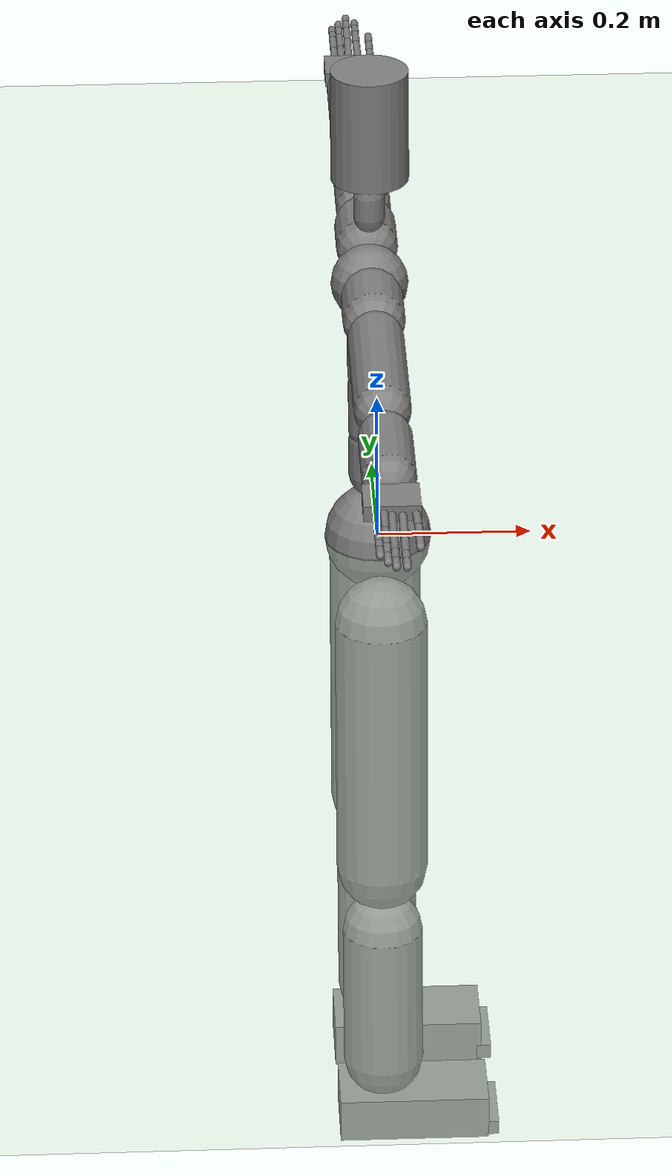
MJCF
<!-- change the damping from 50 to 500 -->
<mujoco model="humanoid">
  <compiler coordinate="local"/>
  <statistic extent="2" center="0 0 1"/>
  <option timestep="0.00555"/>
  <default>
    <motor ctrlrange="-1 1" ctrllimited="true"/>
    <geom type="capsule" condim="1" friction="1.0 0.05 0.05" solimp=".9 .99 .003" solref=".015 1"/>
    <joint type="hinge" damping="0.1" stiffness="5" armature=".007" limited="true" solimplimit="0 .99 .01"/>
    <site size=".04" group="3"/>
    <default class="force-torque">
      <site type="box" size=".01 .01 .02" rgba="1 0 0 1"/>
    </default>
    <default class="touch">
      <site type="capsule" rgba="0 0 1 .3"/>
    </default>
  </default>
  <asset>
    <texture type="skybox" builtin="gradient" rgb1=".4 .5 .6" rgb2="0 0 0" width="100" height="100"/>
    <texture builtin="flat" height="1278" mark="cross" markrgb="1 1 1" name="texgeom" random="0.01" rgb1="0.8 0.6 0.4" rgb2="0.8 0.6 0.4" type="cube" width="127"/>
    <texture builtin="checker" height="100" name="texplane" rgb1="0 0 0" rgb2="0.8 0.8 0.8" type="2d" width="100"/>
    <material name="MatPlane" reflectance="0.5" shininess="1" specular="1" texrepeat="60 60" texture="texplane"/>
    <material name="geom" texture="texgeom" texuniform="true"/>
  </asset>
  <worldbody>
    <light cutoff="100" diffuse="1 1 1" dir="-0 0 -1.3" directional="true" exponent="1" pos="0 0 1.3" specular=".1 .1 .1"/>
    <geom conaffinity="1" condim="3" name="floor" pos="0 0 0" rgba="0.8 0.9 0.8 1" size="100 100 .2" type="plane" material="MatPlane"/>
    <body name="pHipOrigin" pos="0 0 0">
      <freejoint name="pHipOrigin"/>
      <geom type="sphere" contype="1" conaffinity="1" density="4629.6296296296305" size="0.07011" pos="0.0000 0.0000 -0.0000"/>
      <body name="jL5S1" pos="-0.00794668  0 0.07151992">
        <geom type="capsule" contype="1" conaffinity="1" density="1000" fromto="0 0 0.02 0 0 0.07" size="0.03"/>
        <joint name="jL5S1_x" type="hinge" pos="0 0 0" axis="1 0 0" stiffness="500" damping="500" armature="0.02" range="-180.0000 180.0000"/>
        <joint name="jL5S1_y" type="hinge" pos="0 0 0" axis="0 1 0" stiffness="500" damping="500" armature="0.02" range="-180.0000 180.0000"/>
        <joint name="jL5S1_z" type="hinge" pos="0 0 0" axis="0 0 1" stiffness="500" damping="500" armature="0.02" range="-180.0000 180.0000"/>
        <body name="jL4L3" pos="0 0 0.08350357">
          <geom type="capsule" contype="1" conaffinity="1" density="1000" fromto="0 0 0 0 0 0.07" size="0.03"/>
          <joint name="jL4L3_x" type="hinge" pos="0 0 0" axis="1 0 0" stiffness="500" damping="500" armature="0.02" range="-180.0000 180.0000"/>
          <joint name="jL4L3_y" type="hinge" pos="0 0 0" axis="0 1 0" stiffness="500" damping="500" armature="0.02" range="-180.0000 180.0000"/>
          <joint name="jL4L3_z" type="hinge" pos="0 0 0" axis="0 0 1" stiffness="500" damping="500" armature="0.02" range="-180.0000 180.0000"/>
          <body name="jL1T12" pos="-0.00062727 0 0.08130502">
            <geom type="capsule" contype="1" conaffinity="1" density="1000" fromto="0 0 0 0 0 0.06" size="0.03"/>
            <joint name="jL1T12_x" type="hinge" pos="0 0 0" axis="1 0 0" stiffness="500" damping="500" armature="0.02" range="-180.0000 180.0000"/>
            <joint name="jL1T12_y" type="hinge" pos="0 0 0" axis="0 1 0" stiffness="500" damping="500" armature="0.02" range="-180.0000 180.0000"/>
            <joint name="jL1T12_z" type="hinge" pos="0 0 0" axis="0 0 1" stiffness="500" damping="500" armature="0.02" range="-180.0000 180.0000"/>
            <body name="jT9T8" pos="-0.00062768 0 0.0811997">
              <geom type="sphere" contype="1" conaffinity="1" density="1000" size="0.05011" pos="0.000 0.0000 0.050000"/>
              <joint name="jT9T8_x" type="hinge" pos="0 0 0" axis="1 0 0" stiffness="500" damping="500" armature="0.02" range="-180.0000 180.0000"/>
              <joint name="jT9T8_y" type="hinge" pos="0 0 0" axis="0 1 0" stiffness="500" damping="500" armature="0.02" range="-180.0000 180.0000"/>
              <joint name="jT9T8_z" type="hinge" pos="0 0 0" axis="0 0 1" stiffness="500" damping="500" armature="0.02" range="-180.0000 180.0000"/>
              <body name="jT1C7" pos="0 0 0.11338401">
                <geom type="capsule" contype="1" conaffinity="1" density="1000" fromto="0 0 0.03 0 0 0.06" size="0.02"/>
                <joint name="jT1C7_x" type="hinge" pos="0 0 0" axis="1 0 0" stiffness="500" damping="500" armature="0.02" range="-180.0000 180.0000"/>
                <joint name="jT1C7_y" type="hinge" pos="0 0 0" axis="0 1 0" stiffness="500" damping="500" armature="0.02" range="-180.0000 180.0000"/>
                <joint name="jT1C7_z" type="hinge" pos="0 0 0" axis="0 0 1" stiffness="500" damping="500" armature="0.02" range="-180.0000 180.0000"/>
                <body name="jC1Head" pos="0.00099638 0 0.08445642">
                  <geom type="cylinder" contype="1" conaffinity="1" density="1000" fromto="0 0 0 0 0 0.15" size="0.05"/>
                  <joint name="jC1Head_x" type="hinge" pos="0 0 0" axis="1 0 0" stiffness="500" damping="500" armature="0.02" range="-180.0000 180.0000"/>
                  <joint name="jC1Head_y" type="hinge" pos="0 0 0" axis="0 1 0" stiffness="500" damping="500" armature="0.02" range="-180.0000 180.0000"/>
                  <joint name="jC1Head_z" type="hinge" pos="0 0 0" axis="0 0 1" stiffness="500" damping="500" armature="0.02" range="-180.0000 180.0000"/>
                </body>
              </body>
              <body name="jRightT4Shoulder" pos="0 -0.02610512 0.06365001">
                <geom type="capsule" contype="1" conaffinity="1" density="1000" fromto="0 -0.05 0 0 -0.1153021 0" size="0.04"/>
                <joint name="jRightT4Shoulder_x" type="hinge" pos="0 0 0" axis="1 0 0" stiffness="500" damping="500" armature="0.02" range="-180.0000 180.0000"/>
                <joint name="jRightT4Shoulder_y" type="hinge" pos="0 0 0" axis="0 1 0" stiffness="500" damping="500" armature="0.02" range="-180.0000 180.0000"/>
                <joint name="jRightT4Shoulder_z" type="hinge" pos="0 0 0" axis="0 0 1" stiffness="500" damping="500" armature="0.02" range="-180.0000 180.0000"/>
                <body name="jRightShoulder" pos="0 -0.1153021 0">
                  <geom type="capsule" contype="1" conaffinity="1" density="1000" fromto="0 -0.05 0 0 -0.25 0" size="0.036"/>
                  <joint name="jRightShoulder_x" type="hinge" pos="0 0 0" axis="1 0 0" stiffness="500" damping="500" armature="0.02" range="-180.0000 180.0000"/>
                  <joint name="jRightShoulder_y" type="hinge" pos="0 0 0" axis="0 1 0" stiffness="500" damping="500" armature="0.02" range="-180.0000 180.0000"/>
                  <joint name="jRightShoulder_z" type="hinge" pos="0 0 0" axis="0 0 1" stiffness="500" damping="500" armature="0.02" range="-180.0000 180.0000"/>
                  <body name="jRightElbow" pos="0 -0.2728416 0">
                    <geom type="capsule" contype="1" conaffinity="1" density="1000" fromto="0 -0.05 0 8.82977138e-05 -0.16 0" size="0.034"/>
                    <joint name="jRightElbow_x" type="hinge" pos="0 0 0" axis="1 0 0" stiffness="500" damping="500" armature="0.02" range="-180.0000 180.0000"/>
                    <joint name="jRightElbow_y" type="hinge" pos="0 0 0" axis="0 1 0" stiffness="500" damping="500" armature="0.02" range="-180.0000 180.0000"/>
                    <joint name="jRightElbow_z" type="hinge" pos="0 0 0" axis="0 0 1" stiffness="500" damping="500" armature="0.02" range="-180.0000 180.0000"/>
                    <body name="jRightWrist" pos="8.82977138e-05 -2.19383770e-01 0">
                      <geom density="1000" type="box" pos="0 0 0" size="0.035 0.03 0.01 " quat="1.0000 0.0000 0.0000 0.0000"/>
                      <joint name="jRightWrist_x" type="hinge" pos="0 0 0" axis="1 0 0" stiffness="500" damping="500" armature="0.02" range="-180.0000 180.0000"/>
                      <joint name="jRightWrist_y" type="hinge" pos="0 0 0" axis="0 1 0" stiffness="500" damping="500" armature="0.02" range="-180.0000 180.0000"/>
                      <joint name="jRightWrist_z" type="hinge" pos="0 0 0" axis="0 0 1" stiffness="500" damping="500" armature="0.02" range="-180.0000 180.0000"/>
                      <body name="jRightFirstCMC" pos="0.02849464 -0.02731371 -0.00129041">
                      <geom type="capsule" contype="1" conaffinity="1" density="1000" fromto="0 0 0 0.00128457 -0.03624975 0.00076595" size="0.005"/>
                        <joint name="jRightFirstCMC_x" type="hinge" pos="0 0 0" axis="1 0 0" stiffness="500" damping="500" armature="0.02" range="-180.0000 180.0000"/>
                        <joint name="jRightFirstCMC_y" type="hinge" pos="0 0 0" axis="0 1 0" stiffness="500" damping="500" armature="0.02" range="-180.0000 180.0000"/>
                        <joint name="jRightFirstCMC_z" type="hinge" pos="0 0 0" axis="0 0 1" stiffness="500" damping="500" armature="0.02" range="-180.0000 180.0000"/>
                        <body name="jRightFirstMCP" pos="0.00128457 -0.03624975 0.00076595">
                          <geom type="capsule" contype="1" conaffinity="1" density="1000" fromto="0 0 0 0 -0.02664575 0" size="0.005"/>
                          <joint name="jRightFirstMCP_x" type="hinge" pos="0 0 0" axis="1 0 0" stiffness="500" damping="500" armature="0.02" range="-180.0000 180.0000"/>
                          <joint name="jRightFirstMCP_y" type="hinge" pos="0 0 0" axis="0 1 0" stiffness="500" damping="500" armature="0.02" range="-180.0000 180.0000"/>
                          <joint name="jRightFirstMCP_z" type="hinge" pos="0 0 0" axis="0 0 1" stiffness="500" damping="500" armature="0.02" range="-180.0000 180.0000"/>
                          <body name="jRightIP" pos="0 -0.02664575 0">
                            <geom type="capsule" contype="1" conaffinity="1" density="1000" fromto="0 0 0 0 -0.02589792 0 " size="0.005"/>
                            <joint name="jRightIP_x" type="hinge" pos="0 0 0" axis="1 0 0" stiffness="500" damping="500" armature="0.02" range="-180.0000 180.0000"/>
                            <joint name="jRightIP_y" type="hinge" pos="0 0 0" axis="0 1 0" stiffness="500" damping="500" armature="0.02" range="-180.0000 180.0000"/>
                            <joint name="jRightIP_z" type="hinge" pos="0 0 0" axis="0 0 1" stiffness="500" damping="500" armature="0.02" range="-180.0000 180.0000"/>
                          </body>
                        </body>
                      </body>
                      <body name="jRightSecondCMC" pos="0.01206117 -0.03523891 -0.00061465">
                        <geom type="capsule" contype="1" conaffinity="1" density="1000" fromto="0 0 0 -0.00036783 -0.05866635 -0.00060856" size="0.005"/>
                        <joint name="jRightSecondCMC_x" type="hinge" pos="0 0 0" axis="1 0 0" stiffness="500" damping="500" armature="0.02" range="-180.0000 180.0000"/>
                        <joint name="jRightSecondCMC_y" type="hinge" pos="0 0 0" axis="0 1 0" stiffness="500" damping="500" armature="0.02" range="-180.0000 180.0000"/>
                        <joint name="jRightSecondCMC_z" type="hinge" pos="0 0 0" axis="0 0 1" stiffness="500" damping="500" armature="0.02" range="-180.0000 180.0000"/>
                        <body name="jRightSecondMCP" pos="-0.00036783 -0.05866635 -0.00060856">
                          <geom type="capsule" contype="1" conaffinity="1" density="1000" fromto="0 0 0 0 -0.03454162 0 " size="0.005"/>
                          <joint name="jRightSecondMCP_x" type="hinge" pos="0 0 0" axis="1 0 0" stiffness="500" damping="500" armature="0.02" range="-180.0000 180.0000"/>
                          <joint name="jRightSecondMCP_y" type="hinge" pos="0 0 0" axis="0 1 0" stiffness="500" damping="500" armature="0.02" range="-180.0000 180.0000"/>
                          <joint name="jRightSecondMCP_z" type="hinge" pos="0 0 0" axis="0 0 1" stiffness="500" damping="500" armature="0.02" range="-180.0000 180.0000"/>
                          <body name="jRightSecondPIP" pos="0 -0.03454162 0">
                            <geom type="capsule" contype="1" conaffinity="1" density="1000" fromto="0 0 0 0 -0.01882871 0 " size="0.005"/>
                            <joint name="jRightSecondPIP_x" type="hinge" pos="0 0 0" axis="1 0 0" stiffness="500" damping="500" armature="0.02" range="-180.0000 180.0000"/>
                            <joint name="jRightSecondPIP_y" type="hinge" pos="0 0 0" axis="0 1 0" stiffness="500" damping="500" armature="0.02" range="-180.0000 180.0000"/>
                            <joint name="jRightSecondPIP_z" type="hinge" pos="0 0 0" axis="0 0 1" stiffness="500" damping="500" armature="0.02" range="-180.0000 180.0000"/>
                            <body name="jRightSecondDIP" pos="0 -0.01882871 0">
                              <geom type="capsule" contype="1" conaffinity="1" density="1000" fromto="0 0 0 0 -0.01691189 0" size="0.005"/>
                              <joint name="jRightSecondDIP_x" type="hinge" pos="0 0 0" axis="1 0 0" stiffness="500" damping="500" armature="0.02" range="-180.0000 180.0000"/>
                              <joint name="jRightSecondDIP_y" type="hinge" pos="0 0 0" axis="0 1 0" stiffness="500" damping="500" armature="0.02" range="-180.0000 180.0000"/>
                              <joint name="jRightSecondDIP_z" type="hinge" pos="0 0 0" axis="0 0 1" stiffness="500" damping="500" armature="0.02" range="-180.0000 180.0000"/>
                            </body>
                          </body>
                        </body>
                      </body>
                      <body name="jRightThirdCMC" pos="-0.0006841 -0.03699464 0.00155531">
                        <geom type="capsule" contype="1" conaffinity="1" density="1000" fromto="0 0 0 -0.00068542 -0.05678754 0.00154497" size="0.005"/>
                        <joint name="jRightThirdCMC_x" type="hinge" pos="0 0 0" axis="1 0 0" stiffness="500" damping="500" armature="0.02" range="-180.0000 180.0000"/>
                        <joint name="jRightThirdCMC_y" type="hinge" pos="0 0 0" axis="0 1 0" stiffness="500" damping="500" armature="0.02" range="-180.0000 180.0000"/>
                        <joint name="jRightThirdCMC_z" type="hinge" pos="0 0 0" axis="0 0 1" stiffness="500" damping="500" armature="0.02" range="-180.0000 180.0000"/>
                        <body name="jRightThirdMCP" pos="-0.00068542 -0.05678754 0.00154497">
                          <geom type="capsule" contype="1" conaffinity="1" density="1000" fromto="0 0 0 0 -0.03767154 0" size="0.005"/>
                          <joint name="jRightThirdMCP_x" type="hinge" pos="0 0 0" axis="1 0 0" stiffness="500" damping="500" armature="0.02" range="-180.0000 180.0000"/>
                          <joint name="jRightThirdMCP_y" type="hinge" pos="0 0 0" axis="0 1 0" stiffness="500" damping="500" armature="0.02" range="-180.0000 180.0000"/>
                          <joint name="jRightThirdMCP_z" type="hinge" pos="0 0 0" axis="0 0 1" stiffness="500" damping="500" armature="0.02" range="-180.0000 180.0000"/>
                          <body name="jRightThirdPIP" pos="0 -0.03767154 0">
                            <geom type="capsule" contype="1" conaffinity="1" density="1000" fromto="0 0 0 0 -0.02229711 0" size="0.005"/>
                            <joint name="jRightThirdPIP_x" type="hinge" pos="0 0 0" axis="1 0 0" stiffness="500" damping="500" armature="0.02" range="-180.0000 180.0000"/>
                            <joint name="jRightThirdPIP_y" type="hinge" pos="0 0 0" axis="0 1 0" stiffness="500" damping="500" armature="0.02" range="-180.0000 180.0000"/>
                            <joint name="jRightThirdPIP_z" type="hinge" pos="0 0 0" axis="0 0 1" stiffness="500" damping="500" armature="0.02" range="-180.0000 180.0000"/>
                            <body name="jRightThirdDIP" pos="0 -0.02229711 0">
                              <geom type="capsule" contype="1" conaffinity="1" density="1000" fromto="0 0 0 0 -0.01772295 0" size="0.005"/>
                              <joint name="jRightThirdDIP_x" type="hinge" pos="0 0 0" axis="1 0 0" stiffness="500" damping="500" armature="0.02" range="-180.0000 180.0000"/>
                              <joint name="jRightThirdDIP_y" type="hinge" pos="0 0 0" axis="0 1 0" stiffness="500" damping="500" armature="0.02" range="-180.0000 180.0000"/>
                              <joint name="jRightThirdDIP_z" type="hinge" pos="0 0 0" axis="0 0 1" stiffness="500" damping="500" armature="0.02" range="-180.0000 180.0000"/>
                            </body>
                          </body>
                        </body>
                      </body>
                      <body name="jRightFourthCMC" pos="-0.01022862 -0.02848839 0.00067057">
                        <geom type="capsule" contype="1" conaffinity="1" density="1000" fromto="0 0 0 -0.00032712 -0.04483461 0.00070439" size="0.005"/>
                        <joint name="jRightFourthCMC_x" type="hinge" pos="0 0 0" axis="1 0 0" stiffness="500" damping="500" armature="0.02" range="-180.0000 180.0000"/>
                        <joint name="jRightFourthCMC_y" type="hinge" pos="0 0 0" axis="0 1 0" stiffness="500" damping="500" armature="0.02" range="-180.0000 180.0000"/>
                        <joint name="jRightFourthCMC_z" type="hinge" pos="0 0 0" axis="0 0 1" stiffness="500" damping="500" armature="0.02" range="-180.0000 180.0000"/>
                        <body name="jRightFourthMCP" pos="-0.00032712 -0.04483461 0.00070439">
                          <geom type="capsule" contype="1" conaffinity="1" density="1000" fromto="0 0 0 0 -0.04097643 0" size="0.005"/>
                          <joint name="jRightFourthMCP_x" type="hinge" pos="0 0 0" axis="1 0 0" stiffness="500" damping="500" armature="0.02" range="-180.0000 180.0000"/>
                          <joint name="jRightFourthMCP_y" type="hinge" pos="0 0 0" axis="0 1 0" stiffness="500" damping="500" armature="0.02" range="-180.0000 180.0000"/>
                          <joint name="jRightFourthMCP_z" type="hinge" pos="0 0 0" axis="0 0 1" stiffness="500" damping="500" armature="0.02" range="-180.0000 180.0000"/>
                          <body name="jRightFourthPIP" pos="0 -0.04097643 0">
                            <geom type="capsule" contype="1" conaffinity="1" density="1000" fromto="0 0 0 0 -0.02371319942176342 0" size="0.005"/>
                            <joint name="jRightFourthPIP_x" type="hinge" pos="0 0 0" axis="1 0 0" stiffness="500" damping="500" armature="0.02" range="-180.0000 180.0000"/>
                            <joint name="jRightFourthPIP_y" type="hinge" pos="0 0 0" axis="0 1 0" stiffness="500" damping="500" armature="0.02" range="-180.0000 180.0000"/>
                            <joint name="jRightFourthPIP_z" type="hinge" pos="0 0 0" axis="0 0 1" stiffness="500" damping="500" armature="0.02" range="-180.0000 180.0000"/>
                            <body name="jRightFourthDIP" pos="0 -0.0237132 0">
                              <geom type="capsule" contype="1" conaffinity="1" density="1000" fromto="0 0 0 0 -0.01847193 0" size="0.005"/>
                              <joint name="jRightFourthDIP_x" type="hinge" pos="0 0 0" axis="1 0 0" stiffness="500" damping="500" armature="0.02" range="-180.0000 180.0000"/>
                              <joint name="jRightFourthDIP_y" type="hinge" pos="0 0 0" axis="0 1 0" stiffness="500" damping="500" armature="0.02" range="-180.0000 180.0000"/>
                              <joint name="jRightFourthDIP_z" type="hinge" pos="0 0 0" axis="0 0 1" stiffness="500" damping="500" armature="0.02" range="-180.0000 180.0000"/>
                            </body>
                          </body>
                        </body>
                      </body>
                      <body name="jRightFifthCMC" pos="-0.01928027 -0.02686485 0.00052996">
                        <geom type="capsule" contype="1" conaffinity="1" density="1000" fromto="0 0 0 -6.293679e-06 -4.261024e-02 5.863699e-04" size="0.005"/>
                        <joint name="jRightFifthCMC_x" type="hinge" pos="0 0 0" axis="1 0 0" stiffness="500" damping="500" armature="0.02" range="-180.0000 180.0000"/>
                        <joint name="jRightFifthCMC_y" type="hinge" pos="0 0 0" axis="0 1 0" stiffness="500" damping="500" armature="0.02" range="-180.0000 180.0000"/>
                        <joint name="jRightFifthCMC_z" type="hinge" pos="0 0 0" axis="0 0 1" stiffness="500" damping="500" armature="0.02" range="-180.0000 180.0000"/>
                        <body name="jRightFifthMCP" pos="-6.293679e-06 -4.261024e-02 5.863699e-04">
                          <geom type="capsule" contype="1" conaffinity="1" density="1000" fromto="0 0 0 0 -0.03570813 0" size="0.005"/>
                          <joint name="jRightFifthMCP_x" type="hinge" pos="0 0 0" axis="1 0 0" stiffness="500" damping="500" armature="0.02" range="-180.0000 180.0000"/>
                          <joint name="jRightFifthMCP_y" type="hinge" pos="0 0 0" axis="0 1 0" stiffness="500" damping="500" armature="0.02" range="-180.0000 180.0000"/>
                          <joint name="jRightFifthMCP_z" type="hinge" pos="0 0 0" axis="0 0 1" stiffness="500" damping="500" armature="0.02" range="-180.0000 180.0000"/>
                          <body name="jRightFifthPIP" pos="0 -0.03570813 0">
                            <geom type="capsule" contype="1" conaffinity="1" density="1000" fromto="0 0 0 0 -0.01623215 0" size="0.005"/>
                            <joint name="jRightFifthPIP_x" type="hinge" pos="0 0 0" axis="1 0 0" stiffness="500" damping="500" armature="0.02" range="-180.0000 180.0000"/>
                            <joint name="jRightFifthPIP_y" type="hinge" pos="0 0 0" axis="0 1 0" stiffness="500" damping="500" armature="0.02" range="-180.0000 180.0000"/>
                            <joint name="jRightFifthPIP_z" type="hinge" pos="0 0 0" axis="0 0 1" stiffness="500" damping="500" armature="0.02" range="-180.0000 180.0000"/>
                            <body name="jRightFifthDIP" pos="0 -0.01623215 0">
                              <geom type="capsule" contype="1" conaffinity="1" density="1000" fromto="0 0 0 0 -0.01722918 0" size="0.005"/>
                              <joint name="jRightFifthDIP_x" type="hinge" pos="0 0 0" axis="1 0 0" stiffness="500" damping="500" armature="0.02" range="-180.0000 180.0000"/>
                              <joint name="jRightFifthDIP_y" type="hinge" pos="0 0 0" axis="0 1 0" stiffness="500" damping="500" armature="0.02" range="-180.0000 180.0000"/>
                              <joint name="jRightFifthDIP_z" type="hinge" pos="0 0 0" axis="0 0 1" stiffness="500" damping="500" armature="0.02" range="-180.0000 180.0000"/>
                            </body>
                          </body>
                        </body>
                      </body>
                    </body>
                  </body>
                </body>
              </body>
              <body name="jLeftT4Shoulder" pos="0 0.02615714 0.06377686">
                <geom type="capsule" contype="1" conaffinity="1" density="1000" fromto="0 0.05 0 0 0.11537503 0" size="0.04"/>
                <joint name="jLeftT4Shoulder_x" type="hinge" pos="0 0 0" axis="1 0 0" stiffness="500" damping="500" armature="0.02" range="-180.0000 180.0000"/>
                <joint name="jLeftT4Shoulder_y" type="hinge" pos="0 0 0" axis="0 1 0" stiffness="500" damping="500" armature="0.02" range="-180.0000 180.0000"/>
                <joint name="jLeftT4Shoulder_z" type="hinge" pos="0 0 0" axis="0 0 1" stiffness="500" damping="500" armature="0.02" range="-180.0000 180.0000"/>
                <body name="jLeftShoulder" pos="0 0.11537503 0">
                  <geom type="capsule" contype="1" conaffinity="1" density="1000" fromto="0 0.05 0 0 0.25 0" size="0.036"/>
                  <joint name="jLeftShoulder_x" type="hinge" pos="0 0 0" axis="1 0 0" stiffness="500" damping="500" armature="0.02" range="-180.0000 180.0000"/>
                  <joint name="jLeftShoulder_y" type="hinge" pos="0 0 0" axis="0 1 0" stiffness="500" damping="500" armature="0.02" range="-180.0000 180.0000"/>
                  <joint name="jLeftShoulder_z" type="hinge" pos="0 0 0" axis="0 0 1" stiffness="500" damping="500" armature="0.02" range="-180.0000 180.0000"/>
                  <body name="jLeftElbow" pos="0 0.272632 0">
                    <geom type="capsule" contype="1" conaffinity="1" density="1000" fromto="0 0.05 0 8.81479400e-05 0.16 0" size="0.034"/>
                    <joint name="jLeftElbow_x" type="hinge" pos="0 0 0" axis="1 0 0" stiffness="500" damping="500" armature="0.02" range="-180.0000 180.0000"/>
                    <joint name="jLeftElbow_y" type="hinge" pos="0 0 0" axis="0 1 0" stiffness="500" damping="500" armature="0.02" range="-180.0000 180.0000"/>
                    <joint name="jLeftElbow_z" type="hinge" pos="0 0 0" axis="0 0 1" stiffness="500" damping="500" armature="0.02" range="-180.0000 180.0000"/>
                    <body name="jLeftWrist" pos="8.81479400e-05 2.19011643e-01 0">
                      <geom density="1000" type="box" pos="0 0 0" size="0.035 0.03 0.01 " quat="1.0000 0.0000 0.0000 0.0000"/>
                      <joint name="jLeftWrist_x" type="hinge" pos="0 0 0" axis="1 0 0" stiffness="500" damping="500" armature="0.02" range="-180.0000 180.0000"/>
                      <joint name="jLeftWrist_y" type="hinge" pos="0 0 0" axis="0 1 0" stiffness="500" damping="500" armature="0.02" range="-180.0000 180.0000"/>
                      <joint name="jLeftWrist_z" type="hinge" pos="0 0 0" axis="0 0 1" stiffness="500" damping="500" armature="0.02" range="-180.0000 180.0000"/>
                      <body name="jLeftFirstCMC" pos="0.02788955 0.02795541 -0.00124824">
                        <geom type="capsule" contype="1" conaffinity="1" density="1000" fromto="0 0 0 0.0012722 0.03624893 0.00074645" size="0.005"/>
                        <joint name="jLeftFirstCMC_x" type="hinge" pos="0 0 0" axis="1 0 0" stiffness="500" damping="500" armature="0.02" range="-180.0000 180.0000"/>
                        <joint name="jLeftFirstCMC_y" type="hinge" pos="0 0 0" axis="0 1 0" stiffness="500" damping="500" armature="0.02" range="-180.0000 180.0000"/>
                        <joint name="jLeftFirstCMC_z" type="hinge" pos="0 0 0" axis="0 0 1" stiffness="500" damping="500" armature="0.02" range="-180.0000 180.0000"/>
                        <body name="jLeftFirstMCP" pos="0.0012722 0.03624893 0.00074645">
                          <geom type="capsule" contype="1" conaffinity="1" density="1000" fromto="0 0 0 0 0.02664575 0" size="0.005"/>
                          <joint name="jLeftFirstMCP_x" type="hinge" pos="0 0 0" axis="1 0 0" stiffness="500" damping="500" armature="0.02" range="-180.0000 180.0000"/>
                          <joint name="jLeftFirstMCP_y" type="hinge" pos="0 0 0" axis="0 1 0" stiffness="500" damping="500" armature="0.02" range="-180.0000 180.0000"/>
                          <joint name="jLeftFirstMCP_z" type="hinge" pos="0 0 0" axis="0 0 1" stiffness="500" damping="500" armature="0.02" range="-180.0000 180.0000"/>
                          <body name="jLeftIP" pos="0 0.02664575 0">
                            <geom type="capsule" contype="1" conaffinity="1" density="1000" fromto="0 0 0 0 0.02589792 0" size="0.005"/>
                            <joint name="jLeftIP_x" type="hinge" pos="0 0 0" axis="1 0 0" stiffness="500" damping="500" armature="0.02" range="-180.0000 180.0000"/>
                            <joint name="jLeftIP_y" type="hinge" pos="0 0 0" axis="0 1 0" stiffness="500" damping="500" armature="0.02" range="-180.0000 180.0000"/>
                            <joint name="jLeftIP_z" type="hinge" pos="0 0 0" axis="0 0 1" stiffness="500" damping="500" armature="0.02" range="-180.0000 180.0000"/>
                          </body>
                        </body>
                      </body>
                      <body name="jLeftSecondCMC" pos="0.01220009 0.03517407 -0.00061973">
                        <geom type="capsule" contype="1" conaffinity="1" density="1000" fromto="0 0 0 -0.00032072 0.05866756 -0.00061608" size="0.005"/>
                        <joint name="jLeftSecondCMC_x" type="hinge" pos="0 0 0" axis="1 0 0" stiffness="500" damping="500" armature="0.02" range="-180.0000 180.0000"/>
                        <joint name="jLeftSecondCMC_y" type="hinge" pos="0 0 0" axis="0 1 0" stiffness="500" damping="500" armature="0.02" range="-180.0000 180.0000"/>
                        <joint name="jLeftSecondCMC_z" type="hinge" pos="0 0 0" axis="0 0 1" stiffness="500" damping="500" armature="0.02" range="-180.0000 180.0000"/>
                        <body name="jLeftSecondMCP" pos="-0.00032072 0.05866756 -0.00061608">
                          <geom type="capsule" contype="1" conaffinity="1" density="1000" fromto="0 0 0 0 0.03454162 0" size="0.005"/>
                          <joint name="jLeftSecondMCP_x" type="hinge" pos="0 0 0" axis="1 0 0" stiffness="500" damping="500" armature="0.02" range="-180.0000 180.0000"/>
                          <joint name="jLeftSecondMCP_y" type="hinge" pos="0 0 0" axis="0 1 0" stiffness="500" damping="500" armature="0.02" range="-180.0000 180.0000"/>
                          <joint name="jLeftSecondMCP_z" type="hinge" pos="0 0 0" axis="0 0 1" stiffness="500" damping="500" armature="0.02" range="-180.0000 180.0000"/>
                          <body name="jLeftSecondPIP" pos="0 0.03454162 0">
                            <geom type="capsule" contype="1" conaffinity="1" density="1000" fromto="0 0 0 0 0.01882871 0" size="0.005"/>
                            <joint name="jLeftSecondPIP_x" type="hinge" pos="0 0 0" axis="1 0 0" stiffness="500" damping="500" armature="0.02" range="-180.0000 180.0000"/>
                            <joint name="jLeftSecondPIP_y" type="hinge" pos="0 0 0" axis="0 1 0" stiffness="500" damping="500" armature="0.02" range="-180.0000 180.0000"/>
                            <joint name="jLeftSecondPIP_z" type="hinge" pos="0 0 0" axis="0 0 1" stiffness="500" damping="500" armature="0.02" range="-180.0000 180.0000"/>
                            <body name="jLeftSecondDIP" pos="0 0.01882871 0">
                              <geom type="capsule" contype="1" conaffinity="1" density="1000" fromto="0 0 0 0 0.01691189 0" size="0.005"/>
                              <joint name="jLeftSecondDIP_x" type="hinge" pos="0 0 0" axis="1 0 0" stiffness="500" damping="500" armature="0.02" range="-180.0000 180.0000"/>
                              <joint name="jLeftSecondDIP_y" type="hinge" pos="0 0 0" axis="0 1 0" stiffness="500" damping="500" armature="0.02" range="-180.0000 180.0000"/>
                              <joint name="jLeftSecondDIP_z" type="hinge" pos="0 0 0" axis="0 0 1" stiffness="500" damping="500" armature="0.02" range="-180.0000 180.0000"/>
                            </body>
                          </body>
                        </body>
                      </body>
                      <body name="jLeftThirdCMC" pos="-0.00068812 0.03699796 0.00150347">
                        <geom type="capsule" contype="1" conaffinity="1" density="1000" fromto="0 0 0 0.00069096 0.05678865 0.00151391" size="0.005"/>
                        <joint name="jLeftThirdCMC_x" type="hinge" pos="0 0 0" axis="1 0 0" stiffness="500" damping="500" armature="0.02" range="-180.0000 180.0000"/>
                        <joint name="jLeftThirdCMC_y" type="hinge" pos="0 0 0" axis="0 1 0" stiffness="500" damping="500" armature="0.02" range="-180.0000 180.0000"/>
                        <joint name="jLeftThirdCMC_z" type="hinge" pos="0 0 0" axis="0 0 1" stiffness="500" damping="500" armature="0.02" range="-180.0000 180.0000"/>
                        <body name="jLeftThirdMCP" pos="0.00069096 0.05678865 0.00151391">
                          <geom type="capsule" contype="1" conaffinity="1" density="1000" fromto="0 0 0 0 0.03767154 0" size="0.005"/>
                          <joint name="jLeftThirdMCP_x" type="hinge" pos="0 0 0" axis="1 0 0" stiffness="500" damping="500" armature="0.02" range="-180.0000 180.0000"/>
                          <joint name="jLeftThirdMCP_y" type="hinge" pos="0 0 0" axis="0 1 0" stiffness="500" damping="500" armature="0.02" range="-180.0000 180.0000"/>
                          <joint name="jLeftThirdMCP_z" type="hinge" pos="0 0 0" axis="0 0 1" stiffness="500" damping="500" armature="0.02" range="-180.0000 180.0000"/>
                          <body name="jLeftThirdPIP" pos="0 0.03767154 0">
                            <geom type="capsule" contype="1" conaffinity="1" density="1000" fromto="0 0 0 0 0.02229711 0" size="0.005"/>
                            <joint name="jLeftThirdPIP_x" type="hinge" pos="0 0 0" axis="1 0 0" stiffness="500" damping="500" armature="0.02" range="-180.0000 180.0000"/>
                            <joint name="jLeftThirdPIP_y" type="hinge" pos="0 0 0" axis="0 1 0" stiffness="500" damping="500" armature="0.02" range="-180.0000 180.0000"/>
                            <joint name="jLeftThirdPIP_z" type="hinge" pos="0 0 0" axis="0 0 1" stiffness="500" damping="500" armature="0.02" range="-180.0000 180.0000"/>
                            <body name="jLeftThirdDIP" pos="0 0.02229711 0">
                              <geom type="capsule" contype="1" conaffinity="1" density="1000" fromto="0 0 0 0 0.01772295 0" size="0.005"/>
                              <joint name="jLeftThirdDIP_x" type="hinge" pos="0 0 0" axis="1 0 0" stiffness="500" damping="500" armature="0.02" range="-180.0000 180.0000"/>
                              <joint name="jLeftThirdDIP_y" type="hinge" pos="0 0 0" axis="0 1 0" stiffness="500" damping="500" armature="0.02" range="-180.0000 180.0000"/>
                              <joint name="jLeftThirdDIP_z" type="hinge" pos="0 0 0" axis="0 0 1" stiffness="500" damping="500" armature="0.02" range="-180.0000 180.0000"/>
                            </body>
                          </body>
                        </body>
                      </body>
                      <body name="jLeftFourthCMC" pos="-0.01060394 0.02834267 0.00071583">
                        <geom type="capsule" contype="1" conaffinity="1" density="1000" fromto="0 0 0 0 0.044863685965538025 0" size="0.005"/>
                        <joint name="jLeftFourthCMC_x" type="hinge" pos="0 0 0" axis="1 0 0" stiffness="500" damping="500" armature="0.02" range="-180.0000 180.0000"/>
                        <joint name="jLeftFourthCMC_y" type="hinge" pos="0 0 0" axis="0 1 0" stiffness="500" damping="500" armature="0.02" range="-180.0000 180.0000"/>
                        <joint name="jLeftFourthCMC_z" type="hinge" pos="0 0 0" axis="0 0 1" stiffness="500" damping="500" armature="0.02" range="-180.0000 180.0000"/>
                        <body name="jLeftFourthMCP" pos="0 0.044863685965538025 0">
                          <geom type="capsule" contype="1" conaffinity="1" density="1000" fromto="0 0 0 0 0.04097643 0" size="0.005"/>
                          <joint name="jLeftFourthMCP_x" type="hinge" pos="0 0 0" axis="1 0 0" stiffness="500" damping="500" armature="0.02" range="-180.0000 180.0000"/>
                          <joint name="jLeftFourthMCP_y" type="hinge" pos="0 0 0" axis="0 1 0" stiffness="500" damping="500" armature="0.02" range="-180.0000 180.0000"/>
                          <joint name="jLeftFourthMCP_z" type="hinge" pos="0 0 0" axis="0 0 1" stiffness="500" damping="500" armature="0.02" range="-180.0000 180.0000"/>
                          <body name="jLeftFourthPIP" pos="0 0.04097643 0">
                            <geom type="capsule" contype="1" conaffinity="1" density="1000" fromto="0 0 0 0 0.0237132 0" size="0.005"/>
                            <joint name="jLeftFourthPIP_x" type="hinge" pos="0 0 0" axis="1 0 0" stiffness="500" damping="500" armature="0.02" range="-180.0000 180.0000"/>
                            <joint name="jLeftFourthPIP_y" type="hinge" pos="0 0 0" axis="0 1 0" stiffness="500" damping="500" armature="0.02" range="-180.0000 180.0000"/>
                            <joint name="jLeftFourthPIP_z" type="hinge" pos="0 0 0" axis="0 0 1" stiffness="500" damping="500" armature="0.02" range="-180.0000 180.0000"/>
                            <body name="jLeftFourthDIP" pos="0 0.0237132 0">
                              <geom type="capsule" contype="1" conaffinity="1" density="1000" fromto="0 0 0 0 0.01847193 0" size="0.005"/>
                              <joint name="jLeftFourthDIP_x" type="hinge" pos="0 0 0" axis="1 0 0" stiffness="500" damping="500" armature="0.02" range="-180.0000 180.0000"/>
                              <joint name="jLeftFourthDIP_y" type="hinge" pos="0 0 0" axis="0 1 0" stiffness="500" damping="500" armature="0.02" range="-180.0000 180.0000"/>
                              <joint name="jLeftFourthDIP_z" type="hinge" pos="0 0 0" axis="0 0 1" stiffness="500" damping="500" armature="0.02" range="-180.0000 180.0000"/>
                            </body>
                          </body>
                        </body>
                      </body>
                      <body name="jLeftFifthCMC" pos="-0.01986434 0.02644014 0.00053848">
                        <geom type="capsule" contype="1" conaffinity="1" density="1000" fromto="0 0 0 -1.2084114e-05 4.2609077e-02 6.1311777e-04" size="0.005"/>
                        <joint name="jLeftFifthCMC_x" type="hinge" pos="0 0 0" axis="1 0 0" stiffness="500" damping="500" armature="0.02" range="-180.0000 180.0000"/>
                        <joint name="jLeftFifthCMC_y" type="hinge" pos="0 0 0" axis="0 1 0" stiffness="500" damping="500" armature="0.02" range="-180.0000 180.0000"/>
                        <joint name="jLeftFifthCMC_z" type="hinge" pos="0 0 0" axis="0 0 1" stiffness="500" damping="500" armature="0.02" range="-180.0000 180.0000"/>
                        <body name="jLeftFifthMCP" pos="-1.2084114e-05 4.2609077e-02 6.1311777e-04">
                          <geom type="capsule" contype="1" conaffinity="1" density="1000" fromto="0 0 0 0 0.03570813 0" size="0.005"/>
                          <joint name="jLeftFifthMCP_x" type="hinge" pos="0 0 0" axis="1 0 0" stiffness="500" damping="500" armature="0.02" range="-180.0000 180.0000"/>
                          <joint name="jLeftFifthMCP_y" type="hinge" pos="0 0 0" axis="0 1 0" stiffness="500" damping="500" armature="0.02" range="-180.0000 180.0000"/>
                          <joint name="jLeftFifthMCP_z" type="hinge" pos="0 0 0" axis="0 0 1" stiffness="500" damping="500" armature="0.02" range="-180.0000 180.0000"/>
                          <body name="jLeftFifthPIP" pos="0 0.03570813 0">
                            <geom type="capsule" contype="1" conaffinity="1" density="1000" fromto="0 0 0 0 0.01623215 0" size="0.005"/>
                            <joint name="jLeftFifthPIP_x" type="hinge" pos="0 0 0" axis="1 0 0" stiffness="500" damping="500" armature="0.02" range="-180.0000 180.0000"/>
                            <joint name="jLeftFifthPIP_y" type="hinge" pos="0 0 0" axis="0 1 0" stiffness="500" damping="500" armature="0.02" range="-180.0000 180.0000"/>
                            <joint name="jLeftFifthPIP_z" type="hinge" pos="0 0 0" axis="0 0 1" stiffness="500" damping="500" armature="0.02" range="-180.0000 180.0000"/>
                            <body name="jLeftFifthDIP" pos="0 0.01623215 0">
                              <geom type="capsule" contype="1" conaffinity="1" density="1000" fromto="0 0 0 0 0.01722918 0" size="0.005"/>
                              <joint name="jLeftFifthDIP_x" type="hinge" pos="0 0 0" axis="1 0 0" stiffness="500" damping="500" armature="0.02" range="-180.0000 180.0000"/>
                              <joint name="jLeftFifthDIP_y" type="hinge" pos="0 0 0" axis="0 1 0" stiffness="500" damping="500" armature="0.02" range="-180.0000 180.0000"/>
                              <joint name="jLeftFifthDIP_z" type="hinge" pos="0 0 0" axis="0 0 1" stiffness="500" damping="500" armature="0.02" range="-180.0000 180.0000"/>
                            </body>
                          </body>
                        </body>
                      </body>
                    </body>
                  </body>
                </body>
              </body>
            </body>
          </body>
        </body>
      </body>
      <body name="jRightHip" pos="-0.00016282 -0.09662359 0.00146575">
        <geom type="capsule" contype="1" conaffinity="1" density="2040.816327" fromto="0 0 -0.08 5.32453119e-05 0 -4.46569767e-01" size="0.0605"/>
        <joint name="jRightHip_x" type="hinge" pos="0 0 0" axis="1 0 0" stiffness="500" damping="500" armature="0.02" range="-180.0000 180.0000"/>
        <joint name="jRightHip_y" type="hinge" pos="0 0 0" axis="0 1 0" stiffness="500" damping="500" armature="0.02" range="-180.0000 180.0000"/>
        <joint name="jRightHip_z" type="hinge" pos="0 0 0" axis="0 0 1" stiffness="500" damping="500" armature="0.02" range="-180.0000 180.0000"/>
        <body name="jRightKnee" pos="5.32453119e-05 0 -4.46569767e-01">
          <geom type="capsule" contype="1" conaffinity="1" density="1234.567901" fromto="0 0 -0.1 0.00038735 0 -0.30" size="0.0533"/>
          <joint name="jRightKnee_x" type="hinge" pos="0 0 0" axis="1 0 0" stiffness="500" damping="500" armature="0.02" range="-180.0000 180.0000"/>
          <joint name="jRightKnee_y" type="hinge" pos="0 0 0" axis="0 1 0" stiffness="500" damping="500" armature="0.02" range="-180.0000 180.0000"/>
          <joint name="jRightKnee_z" type="hinge" pos="0 0 0" axis="0 0 1" stiffness="500" damping="500" armature="0.02" range="-180.0000 180.0000"/>
          <body name="jRightAnkle" pos="0.00038735 0 -0.3430477">
            <geom density="1000" type="box" pos="0.04 0. -0.03" size="0.1 0.05 0.03" quat="1.0 0 0 0"/>
            <joint name="jRightAnkle_x" type="hinge" pos="0 0 0" axis="1 0 0" stiffness="500" damping="500" armature="0.02" range="-180.0000 180.0000"/>
            <joint name="jRightAnkle_y" type="hinge" pos="0 0 0" axis="0 1 0" stiffness="500" damping="500" armature="0.02" range="-180.0000 180.0000"/>
            <joint name="jRightAnkle_z" type="hinge" pos="0 0 0" axis="0 0 1" stiffness="500" damping="500" armature="0.02" range="-180.0000 180.0000"/>
            <body name="jRightBallFoot" pos="0.14366959 0 -0.06591001">
              <geom density="1000" type="box" pos="0 0 0.02" size="0.01 0.05 0.01" quat="1.0 0 0 0"/>
              <joint name="jRightBallFoot_x" type="hinge" pos="0 0 0" axis="1 0 0" stiffness="500" damping="500" armature="0.02" range="-180.0000 180.0000"/>
              <joint name="jRightBallFoot_y" type="hinge" pos="0 0 0" axis="0 1 0" stiffness="500" damping="500" armature="0.02" range="-180.0000 180.0000"/>
              <joint name="jRightBallFoot_z" type="hinge" pos="0 0 0" axis="0 0 1" stiffness="500" damping="500" armature="0.02" range="-180.0000 180.0000"/>
            </body>
          </body>
        </body>
      </body>
      <body name="jLeftHip" pos="-0.00015932 0.09578385 0.00143379">
        <geom type="capsule" contype="1" conaffinity="1" density="2040.816327" fromto="0 0 -0.08 5.32945440e-05 0 -4.46982678e-01" size="0.0605"/>
        <joint name="jLeftHip_x" type="hinge" pos="0 0 0" axis="1 0 0" stiffness="500" damping="500" armature="0.02" range="-180.0000 180.0000"/>
        <joint name="jLeftHip_y" type="hinge" pos="0 0 0" axis="0 1 0" stiffness="500" damping="500" armature="0.02" range="-180.0000 180.0000"/>
        <joint name="jLeftHip_z" type="hinge" pos="0 0 0" axis="0 0 1" stiffness="500" damping="500" armature="0.02" range="-180.0000 180.0000"/>
        <body name="jLeftKnee" pos="5.32945440e-05 0 -4.46982678e-01">
          <geom type="capsule" contype="1" conaffinity="1" density="1234.567901" fromto="0 0 -0.1 0.00038735 0 -0.30" size="0.0533"/>
          <joint name="jLeftKnee_x" type="hinge" pos="0 0 0" axis="1 0 0" stiffness="500" damping="500" armature="0.02" range="-180.0000 180.0000"/>
          <joint name="jLeftKnee_y" type="hinge" pos="0 0 0" axis="0 1 0" stiffness="500" damping="500" armature="0.02" range="-180.0000 180.0000"/>
          <joint name="jLeftKnee_z" type="hinge" pos="0 0 0" axis="0 0 1" stiffness="500" damping="500" armature="0.02" range="-180.0000 180.0000"/>
          <body name="jLeftAnkle" pos="0.00038735 0 -0.34304772">
            <geom density="1000" type="box" pos="0.04 0. -0.03" size="0.1 0.05 0.03" quat="1.0 0 0 0"/>
            <joint name="jLeftAnkle_x" type="hinge" pos="0 0 0" axis="1 0 0" stiffness="500" damping="500" armature="0.02" range="-180.0000 180.0000"/>
            <joint name="jLeftAnkle_y" type="hinge" pos="0 0 0" axis="0 1 0" stiffness="500" damping="500" armature="0.02" range="-180.0000 180.0000"/>
            <joint name="jLeftAnkle_z" type="hinge" pos="0 0 0" axis="0 0 1" stiffness="500" damping="500" armature="0.02" range="-180.0000 180.0000"/>
            <body name="jLeftBallFoot" pos="0.14366959 0 -0.06591001">
              <geom density="1000" type="box" pos="0 0 0.02" size="0.01 0.05 0.01" quat="1.0 0 0 0"/>
              <joint name="jLeftBallFoot_x" type="hinge" pos="0 0 0" axis="1 0 0" stiffness="500" damping="500" armature="0.02" range="-180.0000 180.0000"/>
              <joint name="jLeftBallFoot_y" type="hinge" pos="0 0 0" axis="0 1 0" stiffness="500" damping="500" armature="0.02" range="-180.0000 180.0000"/>
              <joint name="jLeftBallFoot_z" type="hinge" pos="0 0 0" axis="0 0 1" stiffness="500" damping="500" armature="0.02" range="-180.0000 180.0000"/>
            </body>
          </body>
        </body>
      </body>
    </body>
  </worldbody>
  <actuator>
    <motor name="jL5S1_x" joint="jL5S1_x" gear="500"/>
    <motor name="jL5S1_y" joint="jL5S1_y" gear="500"/>
    <motor name="jL5S1_z" joint="jL5S1_z" gear="500"/>
    <motor name="jL4L3_x" joint="jL4L3_x" gear="500"/>
    <motor name="jL4L3_y" joint="jL4L3_y" gear="500"/>
    <motor name="jL4L3_z" joint="jL4L3_z" gear="500"/>
    <motor name="jL1T12_x" joint="jL1T12_x" gear="500"/>
    <motor name="jL1T12_y" joint="jL1T12_y" gear="500"/>
    <motor name="jL1T12_z" joint="jL1T12_z" gear="500"/>
    <motor name="jT9T8_x" joint="jT9T8_x" gear="500"/>
    <motor name="jT9T8_y" joint="jT9T8_y" gear="500"/>
    <motor name="jT9T8_z" joint="jT9T8_z" gear="500"/>
    <motor name="jT1C7_x" joint="jT1C7_x" gear="500"/>
    <motor name="jT1C7_y" joint="jT1C7_y" gear="500"/>
    <motor name="jT1C7_z" joint="jT1C7_z" gear="500"/>
    <motor name="jC1Head_x" joint="jC1Head_x" gear="500"/>
    <motor name="jC1Head_y" joint="jC1Head_y" gear="500"/>
    <motor name="jC1Head_z" joint="jC1Head_z" gear="500"/>
    <motor name="jRightT4Shoulder_x" joint="jRightT4Shoulder_x" gear="500"/>
    <motor name="jRightT4Shoulder_y" joint="jRightT4Shoulder_y" gear="500"/>
    <motor name="jRightT4Shoulder_z" joint="jRightT4Shoulder_z" gear="500"/>
    <motor name="jRightShoulder_x" joint="jRightShoulder_x" gear="500"/>
    <motor name="jRightShoulder_y" joint="jRightShoulder_y" gear="500"/>
    <motor name="jRightShoulder_z" joint="jRightShoulder_z" gear="500"/>
    <motor name="jRightElbow_x" joint="jRightElbow_x" gear="500"/>
    <motor name="jRightElbow_y" joint="jRightElbow_y" gear="500"/>
    <motor name="jRightElbow_z" joint="jRightElbow_z" gear="500"/>
    <motor name="jRightWrist_x" joint="jRightWrist_x" gear="500"/>
    <motor name="jRightWrist_y" joint="jRightWrist_y" gear="500"/>
    <motor name="jRightWrist_z" joint="jRightWrist_z" gear="500"/>
    <motor name="jRightFirstCMC_x" joint="jRightFirstCMC_x" gear="500"/>
    <motor name="jRightFirstCMC_y" joint="jRightFirstCMC_y" gear="500"/>
    <motor name="jRightFirstCMC_z" joint="jRightFirstCMC_z" gear="500"/>
    <motor name="jRightFirstMCP_x" joint="jRightFirstMCP_x" gear="500"/>
    <motor name="jRightFirstMCP_y" joint="jRightFirstMCP_y" gear="500"/>
    <motor name="jRightFirstMCP_z" joint="jRightFirstMCP_z" gear="500"/>
    <motor name="jRightIP_x" joint="jRightIP_x" gear="500"/>
    <motor name="jRightIP_y" joint="jRightIP_y" gear="500"/>
    <motor name="jRightIP_z" joint="jRightIP_z" gear="500"/>
    <motor name="jRightSecondCMC_x" joint="jRightSecondCMC_x" gear="500"/>
    <motor name="jRightSecondCMC_y" joint="jRightSecondCMC_y" gear="500"/>
    <motor name="jRightSecondCMC_z" joint="jRightSecondCMC_z" gear="500"/>
    <motor name="jRightSecondMCP_x" joint="jRightSecondMCP_x" gear="500"/>
    <motor name="jRightSecondMCP_y" joint="jRightSecondMCP_y" gear="500"/>
    <motor name="jRightSecondMCP_z" joint="jRightSecondMCP_z" gear="500"/>
    <motor name="jRightSecondPIP_x" joint="jRightSecondPIP_x" gear="500"/>
    <motor name="jRightSecondPIP_y" joint="jRightSecondPIP_y" gear="500"/>
    <motor name="jRightSecondPIP_z" joint="jRightSecondPIP_z" gear="500"/>
    <motor name="jRightSecondDIP_x" joint="jRightSecondDIP_x" gear="500"/>
    <motor name="jRightSecondDIP_y" joint="jRightSecondDIP_y" gear="500"/>
    <motor name="jRightSecondDIP_z" joint="jRightSecondDIP_z" gear="500"/>
    <motor name="jRightThirdCMC_x" joint="jRightThirdCMC_x" gear="500"/>
    <motor name="jRightThirdCMC_y" joint="jRightThirdCMC_y" gear="500"/>
    <motor name="jRightThirdCMC_z" joint="jRightThirdCMC_z" gear="500"/>
    <motor name="jRightThirdMCP_x" joint="jRightThirdMCP_x" gear="500"/>
    <motor name="jRightThirdMCP_y" joint="jRightThirdMCP_y" gear="500"/>
    <motor name="jRightThirdMCP_z" joint="jRightThirdMCP_z" gear="500"/>
    <motor name="jRightThirdPIP_x" joint="jRightThirdPIP_x" gear="500"/>
    <motor name="jRightThirdPIP_y" joint="jRightThirdPIP_y" gear="500"/>
    <motor name="jRightThirdPIP_z" joint="jRightThirdPIP_z" gear="500"/>
    <motor name="jRightThirdDIP_x" joint="jRightThirdDIP_x" gear="500"/>
    <motor name="jRightThirdDIP_y" joint="jRightThirdDIP_y" gear="500"/>
    <motor name="jRightThirdDIP_z" joint="jRightThirdDIP_z" gear="500"/>
    <motor name="jRightFourthCMC_x" joint="jRightFourthCMC_x" gear="500"/>
    <motor name="jRightFourthCMC_y" joint="jRightFourthCMC_y" gear="500"/>
    <motor name="jRightFourthCMC_z" joint="jRightFourthCMC_z" gear="500"/>
    <motor name="jRightFourthMCP_x" joint="jRightFourthMCP_x" gear="500"/>
    <motor name="jRightFourthMCP_y" joint="jRightFourthMCP_y" gear="500"/>
    <motor name="jRightFourthMCP_z" joint="jRightFourthMCP_z" gear="500"/>
    <motor name="jRightFourthPIP_x" joint="jRightFourthPIP_x" gear="500"/>
    <motor name="jRightFourthPIP_y" joint="jRightFourthPIP_y" gear="500"/>
    <motor name="jRightFourthPIP_z" joint="jRightFourthPIP_z" gear="500"/>
    <motor name="jRightFourthDIP_x" joint="jRightFourthDIP_x" gear="500"/>
    <motor name="jRightFourthDIP_y" joint="jRightFourthDIP_y" gear="500"/>
    <motor name="jRightFourthDIP_z" joint="jRightFourthDIP_z" gear="500"/>
    <motor name="jRightFifthCMC_x" joint="jRightFifthCMC_x" gear="500"/>
    <motor name="jRightFifthCMC_y" joint="jRightFifthCMC_y" gear="500"/>
    <motor name="jRightFifthCMC_z" joint="jRightFifthCMC_z" gear="500"/>
    <motor name="jRightFifthMCP_x" joint="jRightFifthMCP_x" gear="500"/>
    <motor name="jRightFifthMCP_y" joint="jRightFifthMCP_y" gear="500"/>
    <motor name="jRightFifthMCP_z" joint="jRightFifthMCP_z" gear="500"/>
    <motor name="jRightFifthPIP_x" joint="jRightFifthPIP_x" gear="500"/>
    <motor name="jRightFifthPIP_y" joint="jRightFifthPIP_y" gear="500"/>
    <motor name="jRightFifthPIP_z" joint="jRightFifthPIP_z" gear="500"/>
    <motor name="jRightFifthDIP_x" joint="jRightFifthDIP_x" gear="500"/>
    <motor name="jRightFifthDIP_y" joint="jRightFifthDIP_y" gear="500"/>
    <motor name="jRightFifthDIP_z" joint="jRightFifthDIP_z" gear="500"/>
    <motor name="jLeftT4Shoulder_x" joint="jLeftT4Shoulder_x" gear="500"/>
    <motor name="jLeftT4Shoulder_y" joint="jLeftT4Shoulder_y" gear="500"/>
    <motor name="jLeftT4Shoulder_z" joint="jLeftT4Shoulder_z" gear="500"/>
    <motor name="jLeftShoulder_x" joint="jLeftShoulder_x" gear="500"/>
    <motor name="jLeftShoulder_y" joint="jLeftShoulder_y" gear="500"/>
    <motor name="jLeftShoulder_z" joint="jLeftShoulder_z" gear="500"/>
    <motor name="jLeftElbow_x" joint="jLeftElbow_x" gear="500"/>
    <motor name="jLeftElbow_y" joint="jLeftElbow_y" gear="500"/>
    <motor name="jLeftElbow_z" joint="jLeftElbow_z" gear="500"/>
    <motor name="jLeftWrist_x" joint="jLeftWrist_x" gear="500"/>
    <motor name="jLeftWrist_y" joint="jLeftWrist_y" gear="500"/>
    <motor name="jLeftWrist_z" joint="jLeftWrist_z" gear="500"/>
    <motor name="jLeftFirstCMC_x" joint="jLeftFirstCMC_x" gear="500"/>
    <motor name="jLeftFirstCMC_y" joint="jLeftFirstCMC_y" gear="500"/>
    <motor name="jLeftFirstCMC_z" joint="jLeftFirstCMC_z" gear="500"/>
    <motor name="jLeftFirstMCP_x" joint="jLeftFirstMCP_x" gear="500"/>
    <motor name="jLeftFirstMCP_y" joint="jLeftFirstMCP_y" gear="500"/>
    <motor name="jLeftFirstMCP_z" joint="jLeftFirstMCP_z" gear="500"/>
    <motor name="jLeftIP_x" joint="jLeftIP_x" gear="500"/>
    <motor name="jLeftIP_y" joint="jLeftIP_y" gear="500"/>
    <motor name="jLeftIP_z" joint="jLeftIP_z" gear="500"/>
    <motor name="jLeftSecondCMC_x" joint="jLeftSecondCMC_x" gear="500"/>
    <motor name="jLeftSecondCMC_y" joint="jLeftSecondCMC_y" gear="500"/>
    <motor name="jLeftSecondCMC_z" joint="jLeftSecondCMC_z" gear="500"/>
    <motor name="jLeftSecondMCP_x" joint="jLeftSecondMCP_x" gear="500"/>
    <motor name="jLeftSecondMCP_y" joint="jLeftSecondMCP_y" gear="500"/>
    <motor name="jLeftSecondMCP_z" joint="jLeftSecondMCP_z" gear="500"/>
    <motor name="jLeftSecondPIP_x" joint="jLeftSecondPIP_x" gear="500"/>
    <motor name="jLeftSecondPIP_y" joint="jLeftSecondPIP_y" gear="500"/>
    <motor name="jLeftSecondPIP_z" joint="jLeftSecondPIP_z" gear="500"/>
    <motor name="jLeftSecondDIP_x" joint="jLeftSecondDIP_x" gear="500"/>
    <motor name="jLeftSecondDIP_y" joint="jLeftSecondDIP_y" gear="500"/>
    <motor name="jLeftSecondDIP_z" joint="jLeftSecondDIP_z" gear="500"/>
    <motor name="jLeftThirdCMC_x" joint="jLeftThirdCMC_x" gear="500"/>
    <motor name="jLeftThirdCMC_y" joint="jLeftThirdCMC_y" gear="500"/>
    <motor name="jLeftThirdCMC_z" joint="jLeftThirdCMC_z" gear="500"/>
    <motor name="jLeftThirdMCP_x" joint="jLeftThirdMCP_x" gear="500"/>
    <motor name="jLeftThirdMCP_y" joint="jLeftThirdMCP_y" gear="500"/>
    <motor name="jLeftThirdMCP_z" joint="jLeftThirdMCP_z" gear="500"/>
    <motor name="jLeftThirdPIP_x" joint="jLeftThirdPIP_x" gear="500"/>
    <motor name="jLeftThirdPIP_y" joint="jLeftThirdPIP_y" gear="500"/>
    <motor name="jLeftThirdPIP_z" joint="jLeftThirdPIP_z" gear="500"/>
    <motor name="jLeftThirdDIP_x" joint="jLeftThirdDIP_x" gear="500"/>
    <motor name="jLeftThirdDIP_y" joint="jLeftThirdDIP_y" gear="500"/>
    <motor name="jLeftThirdDIP_z" joint="jLeftThirdDIP_z" gear="500"/>
    <motor name="jLeftFourthCMC_x" joint="jLeftFourthCMC_x" gear="500"/>
    <motor name="jLeftFourthCMC_y" joint="jLeftFourthCMC_y" gear="500"/>
    <motor name="jLeftFourthCMC_z" joint="jLeftFourthCMC_z" gear="500"/>
    <motor name="jLeftFourthMCP_x" joint="jLeftFourthMCP_x" gear="500"/>
    <motor name="jLeftFourthMCP_y" joint="jLeftFourthMCP_y" gear="500"/>
    <motor name="jLeftFourthMCP_z" joint="jLeftFourthMCP_z" gear="500"/>
    <motor name="jLeftFourthPIP_x" joint="jLeftFourthPIP_x" gear="500"/>
    <motor name="jLeftFourthPIP_y" joint="jLeftFourthPIP_y" gear="500"/>
    <motor name="jLeftFourthPIP_z" joint="jLeftFourthPIP_z" gear="500"/>
    <motor name="jLeftFourthDIP_x" joint="jLeftFourthDIP_x" gear="500"/>
    <motor name="jLeftFourthDIP_y" joint="jLeftFourthDIP_y" gear="500"/>
    <motor name="jLeftFourthDIP_z" joint="jLeftFourthDIP_z" gear="500"/>
    <motor name="jLeftFifthCMC_x" joint="jLeftFifthCMC_x" gear="500"/>
    <motor name="jLeftFifthCMC_y" joint="jLeftFifthCMC_y" gear="500"/>
    <motor name="jLeftFifthCMC_z" joint="jLeftFifthCMC_z" gear="500"/>
    <motor name="jLeftFifthMCP_x" joint="jLeftFifthMCP_x" gear="500"/>
    <motor name="jLeftFifthMCP_y" joint="jLeftFifthMCP_y" gear="500"/>
    <motor name="jLeftFifthMCP_z" joint="jLeftFifthMCP_z" gear="500"/>
    <motor name="jLeftFifthPIP_x" joint="jLeftFifthPIP_x" gear="500"/>
    <motor name="jLeftFifthPIP_y" joint="jLeftFifthPIP_y" gear="500"/>
    <motor name="jLeftFifthPIP_z" joint="jLeftFifthPIP_z" gear="500"/>
    <motor name="jLeftFifthDIP_x" joint="jLeftFifthDIP_x" gear="500"/>
    <motor name="jLeftFifthDIP_y" joint="jLeftFifthDIP_y" gear="500"/>
    <motor name="jLeftFifthDIP_z" joint="jLeftFifthDIP_z" gear="500"/>
    <motor name="jRightHip_x" joint="jRightHip_x" gear="500"/>
    <motor name="jRightHip_y" joint="jRightHip_y" gear="500"/>
    <motor name="jRightHip_z" joint="jRightHip_z" gear="500"/>
    <motor name="jRightKnee_x" joint="jRightKnee_x" gear="500"/>
    <motor name="jRightKnee_y" joint="jRightKnee_y" gear="500"/>
    <motor name="jRightKnee_z" joint="jRightKnee_z" gear="500"/>
    <motor name="jRightAnkle_x" joint="jRightAnkle_x" gear="500"/>
    <motor name="jRightAnkle_y" joint="jRightAnkle_y" gear="500"/>
    <motor name="jRightAnkle_z" joint="jRightAnkle_z" gear="500"/>
    <motor name="jRightBallFoot_x" joint="jRightBallFoot_x" gear="500"/>
    <motor name="jRightBallFoot_y" joint="jRightBallFoot_y" gear="500"/>
    <motor name="jRightBallFoot_z" joint="jRightBallFoot_z" gear="500"/>
    <motor name="jLeftHip_x" joint="jLeftHip_x" gear="500"/>
    <motor name="jLeftHip_y" joint="jLeftHip_y" gear="500"/>
    <motor name="jLeftHip_z" joint="jLeftHip_z" gear="500"/>
    <motor name="jLeftKnee_x" joint="jLeftKnee_x" gear="500"/>
    <motor name="jLeftKnee_y" joint="jLeftKnee_y" gear="500"/>
    <motor name="jLeftKnee_z" joint="jLeftKnee_z" gear="500"/>
    <motor name="jLeftAnkle_x" joint="jLeftAnkle_x" gear="500"/>
    <motor name="jLeftAnkle_y" joint="jLeftAnkle_y" gear="500"/>
    <motor name="jLeftAnkle_z" joint="jLeftAnkle_z" gear="500"/>
    <motor name="jLeftBallFoot_x" joint="jLeftBallFoot_x" gear="500"/>
    <motor name="jLeftBallFoot_y" joint="jLeftBallFoot_y" gear="500"/>
    <motor name="jLeftBallFoot_z" joint="jLeftBallFoot_z" gear="500"/>
  </actuator>
</mujoco>
